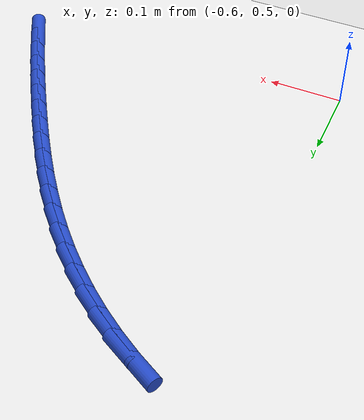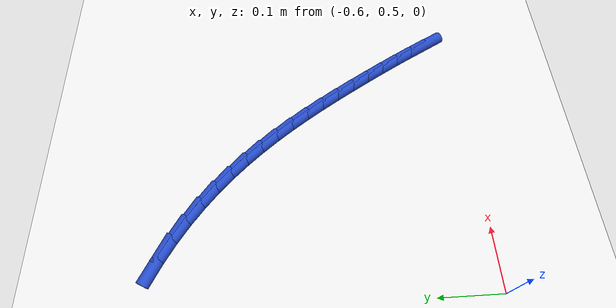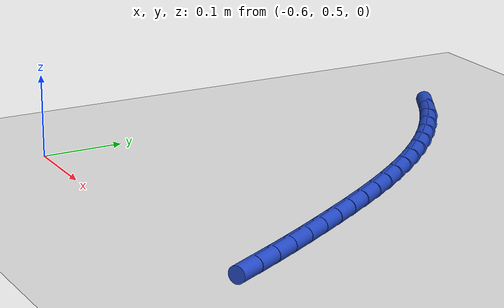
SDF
<sdf version="1.6">
 <world name="default">
  <model name="ground_plane">
   <static>1</static>
   <link name="link">
    <collision name="collision">
     <geometry><plane><normal>0 0 1</normal><size>100 100</size></plane></geometry>
     <surface><friction><ode><mu>100</mu><mu2>50</mu2></ode></friction></surface>
    </collision>
    <visual name="visual">
     <cast_shadows>0</cast_shadows>
     <geometry><plane><normal>0 0 1</normal><size>100 100</size></plane></geometry>
     <material>
      <script><uri>file://media/materials/scripts/gazebo.material</uri><name>Gazebo/WhiteGlow</name></script>
     </material>
    </visual>
   </link>
  </model>
  <model name="line">
   <link name="link_18">
    <pose>-0.15544650451082953 0.5533271193531463 0.01 0 1.57 -1.0656541305282947</pose>
    <collision name="collision">
     <geometry><cylinder><radius>0.01</radius><length>0.08</length></cylinder></geometry>
    </collision>
    <visual name="visual">
     <material>
      <script><name>Gazebo/Blue</name><uri>file://media/materials/scripts/gazebo.material</uri></script>
     </material>
     <geometry><cylinder><radius>0.01</radius><length>0.08</length></cylinder></geometry>
    </visual>
   </link>
   <link name="link_19">
    <pose>-0.17111178016550005 0.581655014368125 0.01 0 1.57 -1.0507919455268815</pose>
    <collision name="collision">
     <geometry><cylinder><radius>0.01</radius><length>0.08</length></cylinder></geometry>
    </collision>
    <visual name="visual">
     <material>
      <script><name>Gazebo/Blue</name><uri>file://media/materials/scripts/gazebo.material</uri></script>
     </material>
     <geometry><cylinder><radius>0.01</radius><length>0.08</length></cylinder></geometry>
    </visual>
   </link>
   <link name="link_20">
    <pose>-0.18720111156251906 0.609755329602365 0.01 0 1.57 -1.0374359127916968</pose>
    <collision name="collision">
     <geometry><cylinder><radius>0.01</radius><length>0.08</length></cylinder></geometry>
    </collision>
    <visual name="visual">
     <material>
      <script><name>Gazebo/Blue</name><uri>file://media/materials/scripts/gazebo.material</uri></script>
     </material>
     <geometry><cylinder><radius>0.01</radius><length>0.08</length></cylinder></geometry>
    </visual>
   </link>
   <link name="link_21">
    <pose>-0.20366359002848672 0.6376370435201415 0.01 0 1.57 -1.0255690157267685</pose>
    <collision name="collision">
     <geometry><cylinder><radius>0.01</radius><length>0.08</length></cylinder></geometry>
    </collision>
    <visual name="visual">
     <material>
      <script><name>Gazebo/Blue</name><uri>file://media/materials/scripts/gazebo.material</uri></script>
     </material>
     <geometry><cylinder><radius>0.01</radius><length>0.08</length></cylinder></geometry>
    </visual>
   </link>
   <link name="link_22">
    <pose>-0.2204483068900034 0.6653091345857304 0.01 0 1.57 -1.0151669082482915</pose>
    <collision name="collision">
     <geometry><cylinder><radius>0.01</radius><length>0.08</length></cylinder></geometry>
    </collision>
    <visual name="visual">
     <material>
      <script><name>Gazebo/Blue</name><uri>file://media/materials/scripts/gazebo.material</uri></script>
     </material>
     <geometry><cylinder><radius>0.01</radius><length>0.08</length></cylinder></geometry>
    </visual>
   </link>
   <link name="link_23">
    <pose>-0.23750461993949099 0.6927804305493603 0.01 0 1.57 -1.004461871084795</pose>
    <collision name="collision">
     <geometry><cylinder><radius>0.01</radius><length>0.08</length></cylinder></geometry>
    </collision>
    <visual name="visual">
     <material>
      <script><name>Gazebo/Blue</name><uri>file://media/materials/scripts/gazebo.material</uri></script>
     </material>
     <geometry><cylinder><radius>0.01</radius><length>0.08</length></cylinder></geometry>
    </visual>
   </link>
   <link name="link_24">
    <pose>-0.2548312977966818 0.7200318122159919 0.01 0 1.57 -0.9896352712538162</pose>
    <collision name="collision">
     <geometry><cylinder><radius>0.01</radius><length>0.08</length></cylinder></geometry>
    </collision>
    <visual name="visual">
     <material>
      <script><name>Gazebo/Blue</name><uri>file://media/materials/scripts/gazebo.material</uri></script>
     </material>
     <geometry><cylinder><radius>0.01</radius><length>0.08</length></cylinder></geometry>
    </visual>
   </link>
   <link name="link_25">
    <pose>-0.2725340618901679 0.7469836674893697 0.01 0 1.57 -0.9701662959529438</pose>
    <collision name="collision">
     <geometry><cylinder><radius>0.01</radius><length>0.08</length></cylinder></geometry>
    </collision>
    <visual name="visual">
     <material>
      <script><name>Gazebo/Blue</name><uri>file://media/materials/scripts/gazebo.material</uri></script>
     </material>
     <geometry><cylinder><radius>0.01</radius><length>0.08</length></cylinder></geometry>
    </visual>
   </link>
   <link name="link_26">
    <pose>-0.29073260863809547 0.773548479967857 0.01 0 1.57 -0.9460405259507334</pose>
    <collision name="collision">
     <geometry><cylinder><radius>0.01</radius><length>0.08</length></cylinder></geometry>
    </collision>
    <visual name="visual">
     <material>
      <script><name>Gazebo/Blue</name><uri>file://media/materials/scripts/gazebo.material</uri></script>
     </material>
     <geometry><cylinder><radius>0.01</radius><length>0.08</length></cylinder></geometry>
    </visual>
   </link>
   <link name="link_27">
    <pose>-0.3095466344586112 0.799638733249817 0.01 0 1.57 -0.9172665106980608</pose>
    <collision name="collision">
     <geometry><cylinder><radius>0.01</radius><length>0.08</length></cylinder></geometry>
    </collision>
    <visual name="visual">
     <material>
      <script><name>Gazebo/Blue</name><uri>file://media/materials/scripts/gazebo.material</uri></script>
     </material>
     <geometry><cylinder><radius>0.01</radius><length>0.08</length></cylinder></geometry>
    </visual>
   </link>
   <link name="link_28">
    <pose>-0.3290958357698615 0.825166910933613 0.01 0 1.57 -0.8838913671172155</pose>
    <collision name="collision">
     <geometry><cylinder><radius>0.01</radius><length>0.08</length></cylinder></geometry>
    </collision>
    <visual name="visual">
     <material>
      <script><name>Gazebo/Blue</name><uri>file://media/materials/scripts/gazebo.material</uri></script>
     </material>
     <geometry><cylinder><radius>0.01</radius><length>0.08</length></cylinder></geometry>
    </visual>
   </link>
   <link name="link_29">
    <pose>-0.34949990898999295 0.8500454966176083 0.01 0 1.57 -0.8460186242015016</pose>
    <collision name="collision">
     <geometry><cylinder><radius>0.01</radius><length>0.08</length></cylinder></geometry>
    </collision>
    <visual name="visual">
     <material>
      <script><name>Gazebo/Blue</name><uri>file://media/materials/scripts/gazebo.material</uri></script>
     </material>
     <geometry><cylinder><radius>0.01</radius><length>0.08</length></cylinder></geometry>
    </visual>
   </link>
   <link name="link_30">
    <pose>-0.3708785505371519 0.8741869739001658 0.01 0 1.57 -0.8038269707775569</pose>
    <collision name="collision">
     <geometry><cylinder><radius>0.01</radius><length>0.08</length></cylinder></geometry>
    </collision>
    <visual name="visual">
     <material>
      <script><name>Gazebo/Blue</name><uri>file://media/materials/scripts/gazebo.material</uri></script>
     </material>
     <geometry><cylinder><radius>0.01</radius><length>0.08</length></cylinder></geometry>
    </visual>
   </link>
   <link name="link_31">
    <pose>-0.393351456829485 0.8975038263796491 0.01 0 1.57 -0.7575877552655206</pose>
    <collision name="collision">
     <geometry><cylinder><radius>0.01</radius><length>0.08</length></cylinder></geometry>
    </collision>
    <visual name="visual">
     <material>
      <script><name>Gazebo/Blue</name><uri>file://media/materials/scripts/gazebo.material</uri></script>
     </material>
     <geometry><cylinder><radius>0.01</radius><length>0.08</length></cylinder></geometry>
    </visual>
   </link>
   <link name="link_32">
    <pose>-0.4170383242851389 0.9199085376544217 0.01 0 1.57 -0.7076783172298815</pose>
    <collision name="collision">
     <geometry><cylinder><radius>0.01</radius><length>0.08</length></cylinder></geometry>
    </collision>
    <visual name="visual">
     <material>
      <script><name>Gazebo/Blue</name><uri>file://media/materials/scripts/gazebo.material</uri></script>
     </material>
     <geometry><cylinder><radius>0.01</radius><length>0.08</length></cylinder></geometry>
    </visual>
   </link>
   <link name="link_33">
    <pose>-0.4420588493222596 0.9413135913228461 0.01 0 1.57 -0.6547674667389537</pose>
    <collision name="collision">
     <geometry><cylinder><radius>0.01</radius><length>0.08</length></cylinder></geometry>
    </collision>
    <visual name="visual">
     <material>
      <script><name>Gazebo/Blue</name><uri>file://media/materials/scripts/gazebo.material</uri></script>
     </material>
     <geometry><cylinder><radius>0.01</radius><length>0.08</length></cylinder></geometry>
    </visual>
   </link>
   <link name="link_34">
    <pose>-0.4685146378490364 0.9616251408655392 0.01 0 1.57 -0.6008056684630555</pose>
    <collision name="collision">
     <geometry><cylinder><radius>0.01</radius><length>0.08</length></cylinder></geometry>
    </collision>
    <visual name="visual">
     <material>
      <script><name>Gazebo/Blue</name><uri>file://media/materials/scripts/gazebo.material</uri></script>
     </material>
     <geometry><cylinder><radius>0.01</radius><length>0.08</length></cylinder></geometry>
    </visual>
   </link>
   <link name="link_35">
    <pose>-0.496329196940261 0.9806870205367018 0.01 0 1.57 -0.5460620051062839</pose>
    <collision name="collision">
     <geometry><cylinder><radius>0.01</radius><length>0.08</length></cylinder></geometry>
    </collision>
    <visual name="visual">
     <material>
      <script><name>Gazebo/Blue</name><uri>file://media/materials/scripts/gazebo.material</uri></script>
     </material>
     <geometry><cylinder><radius>0.01</radius><length>0.08</length></cylinder></geometry>
    </visual>
   </link>
   <link name="link_36">
    <pose>-0.5253247778276172 0.9983076337811789 0.01 0 1.57 -0.4896607806850039</pose>
    <collision name="collision">
     <geometry><cylinder><radius>0.01</radius><length>0.08</length></cylinder></geometry>
    </collision>
    <visual name="visual">
     <material>
      <script><name>Gazebo/Blue</name><uri>file://media/materials/scripts/gazebo.material</uri></script>
     </material>
     <geometry><cylinder><radius>0.01</radius><length>0.08</length></cylinder></geometry>
    </visual>
   </link>
  </model>
 </world>
</sdf>
